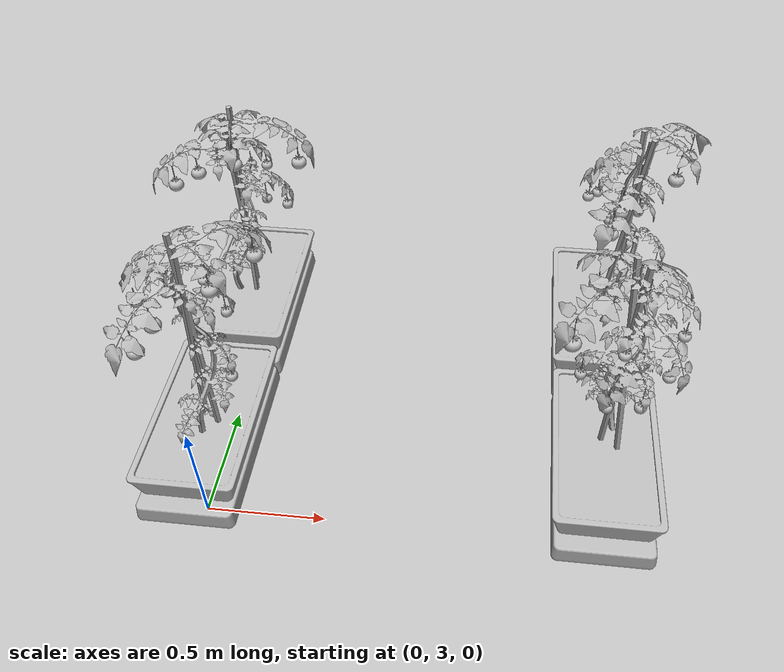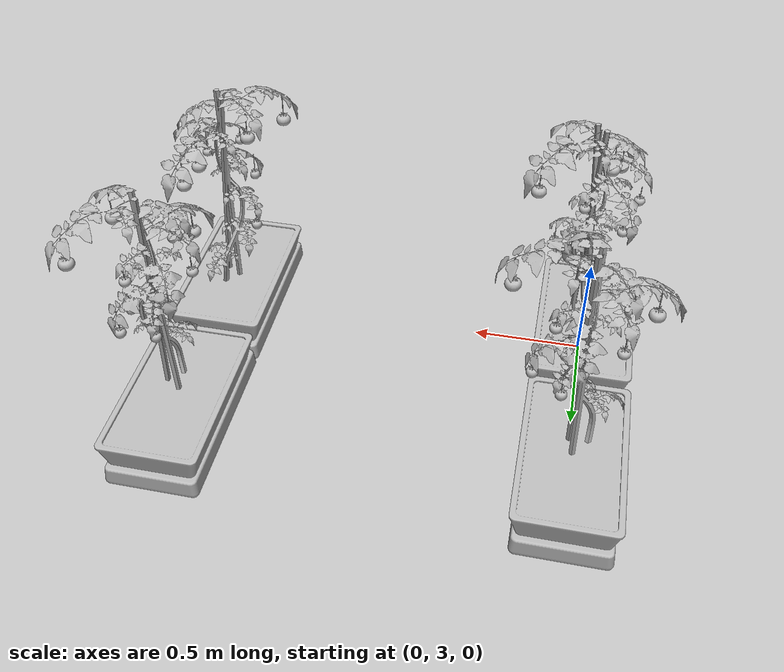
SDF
<sdf version="1.6">
 <world name="default">
  <model name="plant04">
   <static>0</static>
   <link name="tomato_plant_link">
    <inertial>
     <mass>20</mass>
     <inertia><ixx>1</ixx><ixy>0</ixy><ixz>0</ixz><iyy>1</iyy><iyz>0</iyz><izz>1</izz></inertia>
    </inertial>
    <visual name="visual">
     <geometry><mesh><uri>model://tomato_plant/meshes/tomato_plant.obj</uri></mesh></geometry>
    </visual>
    <collision name="collision">
     <pose>0 0 0.05 0 -0 0</pose>
     <geometry><box><size>0.1 0.1 0.1</size></box></geometry>
    </collision>
   </link>
   <link name="t_link_0">
    <pose>0.176111 0.046061 0.713729 0 -0 0</pose>
    <inertial>
     <mass>0.1</mass>
     <inertia><ixx>1</ixx><ixy>0</ixy><ixz>0</ixz><iyy>1</iyy><iyz>0</iyz><izz>1</izz></inertia>
    </inertial>
    <collision name="collision"><geometry><sphere><radius>0.02</radius></sphere></geometry></collision>
    <visual name="visual">
     <geometry><mesh><uri>model://green_tomato/meshes/green_tomato.obj</uri></mesh></geometry>
    </visual>
   </link>
   <joint name="t_joint_0" type="fixed">
    <parent>tomato_plant_link</parent>
    <child>t_link_0</child>
    <axis>
     <xyz>0 0 1</xyz>
     <use_parent_model_frame>1</use_parent_model_frame>
     <limit><lower>-1e+16</lower><upper>1e+16</upper></limit>
    </axis>
    <sensor name="force_torque" type="force_torque">
     <always_on>1</always_on>
     <update_rate>250</update_rate>
     <plugin name="breakable_0" filename="libBreakableJointPlugin.so">
      <breaking_force_N>10</breaking_force_N>
     </plugin>
    </sensor>
   </joint>
   <link name="t_link_1">
    <pose>0.063172 0.108629 0.685474 0 -0 0</pose>
    <inertial>
     <mass>0.1</mass>
     <inertia><ixx>1</ixx><ixy>0</ixy><ixz>0</ixz><iyy>1</iyy><iyz>0</iyz><izz>1</izz></inertia>
    </inertial>
    <collision name="collision"><geometry><sphere><radius>0.02</radius></sphere></geometry></collision>
    <visual name="visual">
     <geometry><mesh><uri>model://green_tomato/meshes/green_tomato.obj</uri></mesh></geometry>
    </visual>
   </link>
   <joint name="t_joint_1" type="fixed">
    <parent>tomato_plant_link</parent>
    <child>t_link_1</child>
    <axis>
     <xyz>0 0 1</xyz>
     <use_parent_model_frame>1</use_parent_model_frame>
     <limit><lower>-1e+16</lower><upper>1e+16</upper></limit>
    </axis>
    <sensor name="force_torque" type="force_torque">
     <always_on>1</always_on>
     <update_rate>250</update_rate>
     <plugin name="breakable_1" filename="libBreakableJointPlugin.so">
      <breaking_force_N>10</breaking_force_N>
     </plugin>
    </sensor>
   </joint>
   <link name="t_link_2">
    <pose>0.062027 -0.170581 0.614534 0 -0 0</pose>
    <inertial>
     <mass>0.1</mass>
     <inertia><ixx>1</ixx><ixy>0</ixy><ixz>0</ixz><iyy>1</iyy><iyz>0</iyz><izz>1</izz></inertia>
    </inertial>
    <collision name="collision"><geometry><sphere><radius>0.02</radius></sphere></geometry></collision>
    <visual name="visual">
     <geometry><mesh><uri>model://green_tomato/meshes/green_tomato.obj</uri></mesh></geometry>
    </visual>
   </link>
   <joint name="t_joint_2" type="fixed">
    <parent>tomato_plant_link</parent>
    <child>t_link_2</child>
    <axis>
     <xyz>0 0 1</xyz>
     <use_parent_model_frame>1</use_parent_model_frame>
     <limit><lower>-1e+16</lower><upper>1e+16</upper></limit>
    </axis>
    <sensor name="force_torque" type="force_torque">
     <always_on>1</always_on>
     <update_rate>250</update_rate>
     <plugin name="breakable_2" filename="libBreakableJointPlugin.so">
      <breaking_force_N>10</breaking_force_N>
     </plugin>
    </sensor>
   </joint>
   <link name="t_link_3">
    <pose>0.114746 0.0304 0.926457 0 -0 0</pose>
    <inertial>
     <mass>0.1</mass>
     <inertia><ixx>1</ixx><ixy>0</ixy><ixz>0</ixz><iyy>1</iyy><iyz>0</iyz><izz>1</izz></inertia>
    </inertial>
    <collision name="collision"><geometry><sphere><radius>0.02</radius></sphere></geometry></collision>
    <visual name="visual">
     <geometry><mesh><uri>model://yellow_tomato/meshes/yellow_tomato.obj</uri></mesh></geometry>
    </visual>
   </link>
   <joint name="t_joint_3" type="fixed">
    <parent>tomato_plant_link</parent>
    <child>t_link_3</child>
    <axis>
     <xyz>0 0 1</xyz>
     <use_parent_model_frame>1</use_parent_model_frame>
     <limit><lower>-1e+16</lower><upper>1e+16</upper></limit>
    </axis>
    <sensor name="force_torque" type="force_torque">
     <always_on>1</always_on>
     <update_rate>250</update_rate>
     <plugin name="breakable_3" filename="libBreakableJointPlugin.so">
      <breaking_force_N>10</breaking_force_N>
     </plugin>
    </sensor>
   </joint>
   <link name="t_link_4">
    <pose>0.003426 0.147925 0.840454 0 -0 0</pose>
    <inertial>
     <mass>0.1</mass>
     <inertia><ixx>1</ixx><ixy>0</ixy><ixz>0</ixz><iyy>1</iyy><iyz>0</iyz><izz>1</izz></inertia>
    </inertial>
    <collision name="collision"><geometry><sphere><radius>0.02</radius></sphere></geometry></collision>
    <visual name="visual">
     <geometry><mesh><uri>model://yellow_tomato/meshes/yellow_tomato.obj</uri></mesh></geometry>
    </visual>
   </link>
   <joint name="t_joint_4" type="fixed">
    <parent>tomato_plant_link</parent>
    <child>t_link_4</child>
    <axis>
     <xyz>0 0 1</xyz>
     <use_parent_model_frame>1</use_parent_model_frame>
     <limit><lower>-1e+16</lower><upper>1e+16</upper></limit>
    </axis>
    <sensor name="force_torque" type="force_torque">
     <always_on>1</always_on>
     <update_rate>250</update_rate>
     <plugin name="breakable_4" filename="libBreakableJointPlugin.so">
      <breaking_force_N>10</breaking_force_N>
     </plugin>
    </sensor>
   </joint>
   <link name="t_link_5">
    <pose>-0.12391 0.091553 0.91111 0 -0 0</pose>
    <inertial>
     <mass>0.1</mass>
     <inertia><ixx>1</ixx><ixy>0</ixy><ixz>0</ixz><iyy>1</iyy><iyz>0</iyz><izz>1</izz></inertia>
    </inertial>
    <collision name="collision"><geometry><sphere><radius>0.02</radius></sphere></geometry></collision>
    <visual name="visual">
     <geometry><mesh><uri>model://yellow_tomato/meshes/yellow_tomato.obj</uri></mesh></geometry>
    </visual>
   </link>
   <joint name="t_joint_5" type="fixed">
    <parent>tomato_plant_link</parent>
    <child>t_link_5</child>
    <axis>
     <xyz>0 0 1</xyz>
     <use_parent_model_frame>1</use_parent_model_frame>
     <limit><lower>-1e+16</lower><upper>1e+16</upper></limit>
    </axis>
    <sensor name="force_torque" type="force_torque">
     <always_on>1</always_on>
     <update_rate>250</update_rate>
     <plugin name="breakable_5" filename="libBreakableJointPlugin.so">
      <breaking_force_N>10</breaking_force_N>
     </plugin>
    </sensor>
   </joint>
   <link name="t_link_6">
    <pose>-0.23014 -0.132697 0.911579 0 -0 0</pose>
    <inertial>
     <mass>0.1</mass>
     <inertia><ixx>1</ixx><ixy>0</ixy><ixz>0</ixz><iyy>1</iyy><iyz>0</iyz><izz>1</izz></inertia>
    </inertial>
    <collision name="collision"><geometry><sphere><radius>0.03</radius></sphere></geometry></collision>
    <visual name="visual">
     <geometry><mesh><uri>model://red_tomato/meshes/red_tomato.obj</uri></mesh></geometry>
    </visual>
   </link>
   <joint name="t_joint_6" type="fixed">
    <parent>tomato_plant_link</parent>
    <child>t_link_6</child>
    <axis>
     <xyz>0 0 1</xyz>
     <use_parent_model_frame>1</use_parent_model_frame>
     <limit><lower>-1e+16</lower><upper>1e+16</upper></limit>
    </axis>
    <sensor name="force_torque" type="force_torque">
     <always_on>1</always_on>
     <update_rate>250</update_rate>
     <plugin name="breakable_6" filename="libBreakableJointPlugin.so">
      <breaking_force_N>10</breaking_force_N>
     </plugin>
    </sensor>
   </joint>
   <link name="t_link_7">
    <pose>-0.139776 -0.09326 0.950185 0 -0 0</pose>
    <inertial>
     <mass>0.1</mass>
     <inertia><ixx>1</ixx><ixy>0</ixy><ixz>0</ixz><iyy>1</iyy><iyz>0</iyz><izz>1</izz></inertia>
    </inertial>
    <collision name="collision"><geometry><sphere><radius>0.03</radius></sphere></geometry></collision>
    <visual name="visual">
     <geometry><mesh><uri>model://red_tomato/meshes/red_tomato.obj</uri></mesh></geometry>
    </visual>
   </link>
   <joint name="t_joint_7" type="fixed">
    <parent>tomato_plant_link</parent>
    <child>t_link_7</child>
    <axis>
     <xyz>0 0 1</xyz>
     <use_parent_model_frame>1</use_parent_model_frame>
     <limit><lower>-1e+16</lower><upper>1e+16</upper></limit>
    </axis>
    <sensor name="force_torque" type="force_torque">
     <always_on>1</always_on>
     <update_rate>250</update_rate>
     <plugin name="breakable_7" filename="libBreakableJointPlugin.so">
      <breaking_force_N>10</breaking_force_N>
     </plugin>
    </sensor>
   </joint>
   <link name="t_link_8">
    <pose>0.284181 -0.063758 1.01928 0 -0 0</pose>
    <inertial>
     <mass>0.1</mass>
     <inertia><ixx>1</ixx><ixy>0</ixy><ixz>0</ixz><iyy>1</iyy><iyz>0</iyz><izz>1</izz></inertia>
    </inertial>
    <collision name="collision"><geometry><sphere><radius>0.03</radius></sphere></geometry></collision>
    <visual name="visual">
     <geometry><mesh><uri>model://red_tomato/meshes/red_tomato.obj</uri></mesh></geometry>
    </visual>
   </link>
   <joint name="t_joint_8" type="fixed">
    <parent>tomato_plant_link</parent>
    <child>t_link_8</child>
    <axis>
     <xyz>0 0 1</xyz>
     <use_parent_model_frame>1</use_parent_model_frame>
     <limit><lower>-1e+16</lower><upper>1e+16</upper></limit>
    </axis>
    <sensor name="force_torque" type="force_torque">
     <always_on>1</always_on>
     <update_rate>250</update_rate>
     <plugin name="breakable_8" filename="libBreakableJointPlugin.so">
      <breaking_force_N>10</breaking_force_N>
     </plugin>
    </sensor>
   </joint>
   <link name="t_link_9">
    <pose>0.055319 -0.176349 1.06525 0 -0 0</pose>
    <inertial>
     <mass>0.1</mass>
     <inertia><ixx>1</ixx><ixy>0</ixy><ixz>0</ixz><iyy>1</iyy><iyz>0</iyz><izz>1</izz></inertia>
    </inertial>
    <collision name="collision"><geometry><sphere><radius>0.03</radius></sphere></geometry></collision>
    <visual name="visual">
     <geometry><mesh><uri>model://red_tomato/meshes/red_tomato.obj</uri></mesh></geometry>
    </visual>
   </link>
   <joint name="t_joint_9" type="fixed">
    <parent>tomato_plant_link</parent>
    <child>t_link_9</child>
    <axis>
     <xyz>0 0 1</xyz>
     <use_parent_model_frame>1</use_parent_model_frame>
     <limit><lower>-1e+16</lower><upper>1e+16</upper></limit>
    </axis>
    <sensor name="force_torque" type="force_torque">
     <always_on>1</always_on>
     <update_rate>250</update_rate>
     <plugin name="breakable_9" filename="libBreakableJointPlugin.so">
      <breaking_force_N>10</breaking_force_N>
     </plugin>
    </sensor>
   </joint>
   <pose>0.018753 3.21154 0.111703 0.000511 0.001752 0.771782</pose>
  </model>
  <model name="trough04">
   <static>1</static>
   <link name="trough_link">
    <visual name="visual"><geometry><mesh><uri>model://trough/meshes/truf.obj</uri></mesh></geometry></visual>
   </link>
   <pose>0 3.2 0.18 1.57 -0 1.57</pose>
  </model>
  <model name="plant05">
   <static>0</static>
   <link name="tomato_plant_link">
    <inertial>
     <mass>20</mass>
     <inertia><ixx>1</ixx><ixy>0</ixy><ixz>0</ixz><iyy>1</iyy><iyz>0</iyz><izz>1</izz></inertia>
    </inertial>
    <visual name="visual">
     <geometry><mesh><uri>model://tomato_plant/meshes/tomato_plant.obj</uri></mesh></geometry>
    </visual>
    <collision name="collision">
     <pose>0 0 0.05 0 -0 0</pose>
     <geometry><box><size>0.1 0.1 0.1</size></box></geometry>
    </collision>
   </link>
   <link name="t_link_0">
    <pose>0.176111 0.046061 0.713729 0 -0 0</pose>
    <inertial>
     <mass>0.1</mass>
     <inertia><ixx>1</ixx><ixy>0</ixy><ixz>0</ixz><iyy>1</iyy><iyz>0</iyz><izz>1</izz></inertia>
    </inertial>
    <collision name="collision"><geometry><sphere><radius>0.02</radius></sphere></geometry></collision>
    <visual name="visual">
     <geometry><mesh><uri>model://green_tomato/meshes/green_tomato.obj</uri></mesh></geometry>
    </visual>
   </link>
   <joint name="t_joint_0" type="fixed">
    <parent>tomato_plant_link</parent>
    <child>t_link_0</child>
    <axis>
     <xyz>0 0 1</xyz>
     <use_parent_model_frame>1</use_parent_model_frame>
     <limit><lower>-1e+16</lower><upper>1e+16</upper></limit>
    </axis>
    <sensor name="force_torque" type="force_torque">
     <always_on>1</always_on>
     <update_rate>250</update_rate>
     <plugin name="breakable_0" filename="libBreakableJointPlugin.so">
      <breaking_force_N>10</breaking_force_N>
     </plugin>
    </sensor>
   </joint>
   <link name="t_link_1">
    <pose>0.063172 0.108629 0.685474 0 -0 0</pose>
    <inertial>
     <mass>0.1</mass>
     <inertia><ixx>1</ixx><ixy>0</ixy><ixz>0</ixz><iyy>1</iyy><iyz>0</iyz><izz>1</izz></inertia>
    </inertial>
    <collision name="collision"><geometry><sphere><radius>0.02</radius></sphere></geometry></collision>
    <visual name="visual">
     <geometry><mesh><uri>model://green_tomato/meshes/green_tomato.obj</uri></mesh></geometry>
    </visual>
   </link>
   <joint name="t_joint_1" type="fixed">
    <parent>tomato_plant_link</parent>
    <child>t_link_1</child>
    <axis>
     <xyz>0 0 1</xyz>
     <use_parent_model_frame>1</use_parent_model_frame>
     <limit><lower>-1e+16</lower><upper>1e+16</upper></limit>
    </axis>
    <sensor name="force_torque" type="force_torque">
     <always_on>1</always_on>
     <update_rate>250</update_rate>
     <plugin name="breakable_1" filename="libBreakableJointPlugin.so">
      <breaking_force_N>10</breaking_force_N>
     </plugin>
    </sensor>
   </joint>
   <link name="t_link_2">
    <pose>0.062027 -0.170581 0.614534 0 -0 0</pose>
    <inertial>
     <mass>0.1</mass>
     <inertia><ixx>1</ixx><ixy>0</ixy><ixz>0</ixz><iyy>1</iyy><iyz>0</iyz><izz>1</izz></inertia>
    </inertial>
    <collision name="collision"><geometry><sphere><radius>0.02</radius></sphere></geometry></collision>
    <visual name="visual">
     <geometry><mesh><uri>model://green_tomato/meshes/green_tomato.obj</uri></mesh></geometry>
    </visual>
   </link>
   <joint name="t_joint_2" type="fixed">
    <parent>tomato_plant_link</parent>
    <child>t_link_2</child>
    <axis>
     <xyz>0 0 1</xyz>
     <use_parent_model_frame>1</use_parent_model_frame>
     <limit><lower>-1e+16</lower><upper>1e+16</upper></limit>
    </axis>
    <sensor name="force_torque" type="force_torque">
     <always_on>1</always_on>
     <update_rate>250</update_rate>
     <plugin name="breakable_2" filename="libBreakableJointPlugin.so">
      <breaking_force_N>10</breaking_force_N>
     </plugin>
    </sensor>
   </joint>
   <link name="t_link_3">
    <pose>0.114746 0.0304 0.926457 0 -0 0</pose>
    <inertial>
     <mass>0.1</mass>
     <inertia><ixx>1</ixx><ixy>0</ixy><ixz>0</ixz><iyy>1</iyy><iyz>0</iyz><izz>1</izz></inertia>
    </inertial>
    <collision name="collision"><geometry><sphere><radius>0.02</radius></sphere></geometry></collision>
    <visual name="visual">
     <geometry><mesh><uri>model://yellow_tomato/meshes/yellow_tomato.obj</uri></mesh></geometry>
    </visual>
   </link>
   <joint name="t_joint_3" type="fixed">
    <parent>tomato_plant_link</parent>
    <child>t_link_3</child>
    <axis>
     <xyz>0 0 1</xyz>
     <use_parent_model_frame>1</use_parent_model_frame>
     <limit><lower>-1e+16</lower><upper>1e+16</upper></limit>
    </axis>
    <sensor name="force_torque" type="force_torque">
     <always_on>1</always_on>
     <update_rate>250</update_rate>
     <plugin name="breakable_3" filename="libBreakableJointPlugin.so">
      <breaking_force_N>10</breaking_force_N>
     </plugin>
    </sensor>
   </joint>
   <link name="t_link_4">
    <pose>0.003426 0.147925 0.840454 0 -0 0</pose>
    <inertial>
     <mass>0.1</mass>
     <inertia><ixx>1</ixx><ixy>0</ixy><ixz>0</ixz><iyy>1</iyy><iyz>0</iyz><izz>1</izz></inertia>
    </inertial>
    <collision name="collision"><geometry><sphere><radius>0.02</radius></sphere></geometry></collision>
    <visual name="visual">
     <geometry><mesh><uri>model://yellow_tomato/meshes/yellow_tomato.obj</uri></mesh></geometry>
    </visual>
   </link>
   <joint name="t_joint_4" type="fixed">
    <parent>tomato_plant_link</parent>
    <child>t_link_4</child>
    <axis>
     <xyz>0 0 1</xyz>
     <use_parent_model_frame>1</use_parent_model_frame>
     <limit><lower>-1e+16</lower><upper>1e+16</upper></limit>
    </axis>
    <sensor name="force_torque" type="force_torque">
     <always_on>1</always_on>
     <update_rate>250</update_rate>
     <plugin name="breakable_4" filename="libBreakableJointPlugin.so">
      <breaking_force_N>10</breaking_force_N>
     </plugin>
    </sensor>
   </joint>
   <link name="t_link_5">
    <pose>-0.12391 0.091553 0.91111 0 -0 0</pose>
    <inertial>
     <mass>0.1</mass>
     <inertia><ixx>1</ixx><ixy>0</ixy><ixz>0</ixz><iyy>1</iyy><iyz>0</iyz><izz>1</izz></inertia>
    </inertial>
    <collision name="collision"><geometry><sphere><radius>0.02</radius></sphere></geometry></collision>
    <visual name="visual">
     <geometry><mesh><uri>model://yellow_tomato/meshes/yellow_tomato.obj</uri></mesh></geometry>
    </visual>
   </link>
   <joint name="t_joint_5" type="fixed">
    <parent>tomato_plant_link</parent>
    <child>t_link_5</child>
    <axis>
     <xyz>0 0 1</xyz>
     <use_parent_model_frame>1</use_parent_model_frame>
     <limit><lower>-1e+16</lower><upper>1e+16</upper></limit>
    </axis>
    <sensor name="force_torque" type="force_torque">
     <always_on>1</always_on>
     <update_rate>250</update_rate>
     <plugin name="breakable_5" filename="libBreakableJointPlugin.so">
      <breaking_force_N>10</breaking_force_N>
     </plugin>
    </sensor>
   </joint>
   <link name="t_link_6">
    <pose>-0.23014 -0.132697 0.911579 0 -0 0</pose>
    <inertial>
     <mass>0.1</mass>
     <inertia><ixx>1</ixx><ixy>0</ixy><ixz>0</ixz><iyy>1</iyy><iyz>0</iyz><izz>1</izz></inertia>
    </inertial>
    <collision name="collision"><geometry><sphere><radius>0.03</radius></sphere></geometry></collision>
    <visual name="visual">
     <geometry><mesh><uri>model://red_tomato/meshes/red_tomato.obj</uri></mesh></geometry>
    </visual>
   </link>
   <joint name="t_joint_6" type="fixed">
    <parent>tomato_plant_link</parent>
    <child>t_link_6</child>
    <axis>
     <xyz>0 0 1</xyz>
     <use_parent_model_frame>1</use_parent_model_frame>
     <limit><lower>-1e+16</lower><upper>1e+16</upper></limit>
    </axis>
    <sensor name="force_torque" type="force_torque">
     <always_on>1</always_on>
     <update_rate>250</update_rate>
     <plugin name="breakable_6" filename="libBreakableJointPlugin.so">
      <breaking_force_N>10</breaking_force_N>
     </plugin>
    </sensor>
   </joint>
   <link name="t_link_7">
    <pose>-0.139776 -0.09326 0.950185 0 -0 0</pose>
    <inertial>
     <mass>0.1</mass>
     <inertia><ixx>1</ixx><ixy>0</ixy><ixz>0</ixz><iyy>1</iyy><iyz>0</iyz><izz>1</izz></inertia>
    </inertial>
    <collision name="collision"><geometry><sphere><radius>0.03</radius></sphere></geometry></collision>
    <visual name="visual">
     <geometry><mesh><uri>model://red_tomato/meshes/red_tomato.obj</uri></mesh></geometry>
    </visual>
   </link>
   <joint name="t_joint_7" type="fixed">
    <parent>tomato_plant_link</parent>
    <child>t_link_7</child>
    <axis>
     <xyz>0 0 1</xyz>
     <use_parent_model_frame>1</use_parent_model_frame>
     <limit><lower>-1e+16</lower><upper>1e+16</upper></limit>
    </axis>
    <sensor name="force_torque" type="force_torque">
     <always_on>1</always_on>
     <update_rate>250</update_rate>
     <plugin name="breakable_7" filename="libBreakableJointPlugin.so">
      <breaking_force_N>10</breaking_force_N>
     </plugin>
    </sensor>
   </joint>
   <link name="t_link_8">
    <pose>0.284181 -0.063758 1.01928 0 -0 0</pose>
    <inertial>
     <mass>0.1</mass>
     <inertia><ixx>1</ixx><ixy>0</ixy><ixz>0</ixz><iyy>1</iyy><iyz>0</iyz><izz>1</izz></inertia>
    </inertial>
    <collision name="collision"><geometry><sphere><radius>0.03</radius></sphere></geometry></collision>
    <visual name="visual">
     <geometry><mesh><uri>model://red_tomato/meshes/red_tomato.obj</uri></mesh></geometry>
    </visual>
   </link>
   <joint name="t_joint_8" type="fixed">
    <parent>tomato_plant_link</parent>
    <child>t_link_8</child>
    <axis>
     <xyz>0 0 1</xyz>
     <use_parent_model_frame>1</use_parent_model_frame>
     <limit><lower>-1e+16</lower><upper>1e+16</upper></limit>
    </axis>
    <sensor name="force_torque" type="force_torque">
     <always_on>1</always_on>
     <update_rate>250</update_rate>
     <plugin name="breakable_8" filename="libBreakableJointPlugin.so">
      <breaking_force_N>10</breaking_force_N>
     </plugin>
    </sensor>
   </joint>
   <link name="t_link_9">
    <pose>0.055319 -0.176349 1.06525 0 -0 0</pose>
    <inertial>
     <mass>0.1</mass>
     <inertia><ixx>1</ixx><ixy>0</ixy><ixz>0</ixz><iyy>1</iyy><iyz>0</iyz><izz>1</izz></inertia>
    </inertial>
    <collision name="collision"><geometry><sphere><radius>0.03</radius></sphere></geometry></collision>
    <visual name="visual">
     <geometry><mesh><uri>model://red_tomato/meshes/red_tomato.obj</uri></mesh></geometry>
    </visual>
   </link>
   <joint name="t_joint_9" type="fixed">
    <parent>tomato_plant_link</parent>
    <child>t_link_9</child>
    <axis>
     <xyz>0 0 1</xyz>
     <use_parent_model_frame>1</use_parent_model_frame>
     <limit><lower>-1e+16</lower><upper>1e+16</upper></limit>
    </axis>
    <sensor name="force_torque" type="force_torque">
     <always_on>1</always_on>
     <update_rate>250</update_rate>
     <plugin name="breakable_9" filename="libBreakableJointPlugin.so">
      <breaking_force_N>10</breaking_force_N>
     </plugin>
    </sensor>
   </joint>
   <pose>0.020188 4.01228 0.11118 -0.000832 0.001624 -0.013698</pose>
  </model>
  <model name="trough05">
   <static>1</static>
   <link name="trough_link">
    <visual name="visual"><geometry><mesh><uri>model://trough/meshes/truf.obj</uri></mesh></geometry></visual>
   </link>
   <pose>0 4 0.18 1.57 -0 1.57</pose>
  </model>
  <model name="plant14">
   <static>0</static>
   <link name="tomato_plant_link">
    <inertial>
     <mass>20</mass>
     <inertia><ixx>1</ixx><ixy>0</ixy><ixz>0</ixz><iyy>1</iyy><iyz>0</iyz><izz>1</izz></inertia>
    </inertial>
    <visual name="visual">
     <geometry><mesh><uri>model://tomato_plant/meshes/tomato_plant.obj</uri></mesh></geometry>
    </visual>
    <collision name="collision">
     <pose>0 0 0.05 0 -0 0</pose>
     <geometry><box><size>0.1 0.1 0.1</size></box></geometry>
    </collision>
   </link>
   <link name="t_link_0">
    <pose>0.176111 0.046061 0.713729 0 -0 0</pose>
    <inertial>
     <mass>0.1</mass>
     <inertia><ixx>1</ixx><ixy>0</ixy><ixz>0</ixz><iyy>1</iyy><iyz>0</iyz><izz>1</izz></inertia>
    </inertial>
    <collision name="collision"><geometry><sphere><radius>0.02</radius></sphere></geometry></collision>
    <visual name="visual">
     <geometry><mesh><uri>model://green_tomato/meshes/green_tomato.obj</uri></mesh></geometry>
    </visual>
   </link>
   <joint name="t_joint_0" type="fixed">
    <parent>tomato_plant_link</parent>
    <child>t_link_0</child>
    <axis>
     <xyz>0 0 1</xyz>
     <use_parent_model_frame>1</use_parent_model_frame>
     <limit><lower>-1e+16</lower><upper>1e+16</upper></limit>
    </axis>
    <sensor name="force_torque" type="force_torque">
     <always_on>1</always_on>
     <update_rate>250</update_rate>
     <plugin name="breakable_0" filename="libBreakableJointPlugin.so">
      <breaking_force_N>10</breaking_force_N>
     </plugin>
    </sensor>
   </joint>
   <link name="t_link_1">
    <pose>0.063172 0.108629 0.685474 0 -0 0</pose>
    <inertial>
     <mass>0.1</mass>
     <inertia><ixx>1</ixx><ixy>0</ixy><ixz>0</ixz><iyy>1</iyy><iyz>0</iyz><izz>1</izz></inertia>
    </inertial>
    <collision name="collision"><geometry><sphere><radius>0.02</radius></sphere></geometry></collision>
    <visual name="visual">
     <geometry><mesh><uri>model://green_tomato/meshes/green_tomato.obj</uri></mesh></geometry>
    </visual>
   </link>
   <joint name="t_joint_1" type="fixed">
    <parent>tomato_plant_link</parent>
    <child>t_link_1</child>
    <axis>
     <xyz>0 0 1</xyz>
     <use_parent_model_frame>1</use_parent_model_frame>
     <limit><lower>-1e+16</lower><upper>1e+16</upper></limit>
    </axis>
    <sensor name="force_torque" type="force_torque">
     <always_on>1</always_on>
     <update_rate>250</update_rate>
     <plugin name="breakable_1" filename="libBreakableJointPlugin.so">
      <breaking_force_N>10</breaking_force_N>
     </plugin>
    </sensor>
   </joint>
   <link name="t_link_2">
    <pose>0.062027 -0.170581 0.614534 0 -0 0</pose>
    <inertial>
     <mass>0.1</mass>
     <inertia><ixx>1</ixx><ixy>0</ixy><ixz>0</ixz><iyy>1</iyy><iyz>0</iyz><izz>1</izz></inertia>
    </inertial>
    <collision name="collision"><geometry><sphere><radius>0.02</radius></sphere></geometry></collision>
    <visual name="visual">
     <geometry><mesh><uri>model://green_tomato/meshes/green_tomato.obj</uri></mesh></geometry>
    </visual>
   </link>
   <joint name="t_joint_2" type="fixed">
    <parent>tomato_plant_link</parent>
    <child>t_link_2</child>
    <axis>
     <xyz>0 0 1</xyz>
     <use_parent_model_frame>1</use_parent_model_frame>
     <limit><lower>-1e+16</lower><upper>1e+16</upper></limit>
    </axis>
    <sensor name="force_torque" type="force_torque">
     <always_on>1</always_on>
     <update_rate>250</update_rate>
     <plugin name="breakable_2" filename="libBreakableJointPlugin.so">
      <breaking_force_N>10</breaking_force_N>
     </plugin>
    </sensor>
   </joint>
   <link name="t_link_3">
    <pose>0.114746 0.0304 0.926457 0 -0 0</pose>
    <inertial>
     <mass>0.1</mass>
     <inertia><ixx>1</ixx><ixy>0</ixy><ixz>0</ixz><iyy>1</iyy><iyz>0</iyz><izz>1</izz></inertia>
    </inertial>
    <collision name="collision"><geometry><sphere><radius>0.02</radius></sphere></geometry></collision>
    <visual name="visual">
     <geometry><mesh><uri>model://yellow_tomato/meshes/yellow_tomato.obj</uri></mesh></geometry>
    </visual>
   </link>
   <joint name="t_joint_3" type="fixed">
    <parent>tomato_plant_link</parent>
    <child>t_link_3</child>
    <axis>
     <xyz>0 0 1</xyz>
     <use_parent_model_frame>1</use_parent_model_frame>
     <limit><lower>-1e+16</lower><upper>1e+16</upper></limit>
    </axis>
    <sensor name="force_torque" type="force_torque">
     <always_on>1</always_on>
     <update_rate>250</update_rate>
     <plugin name="breakable_3" filename="libBreakableJointPlugin.so">
      <breaking_force_N>10</breaking_force_N>
     </plugin>
    </sensor>
   </joint>
   <link name="t_link_4">
    <pose>0.003426 0.147925 0.840454 0 -0 0</pose>
    <inertial>
     <mass>0.1</mass>
     <inertia><ixx>1</ixx><ixy>0</ixy><ixz>0</ixz><iyy>1</iyy><iyz>0</iyz><izz>1</izz></inertia>
    </inertial>
    <collision name="collision"><geometry><sphere><radius>0.02</radius></sphere></geometry></collision>
    <visual name="visual">
     <geometry><mesh><uri>model://yellow_tomato/meshes/yellow_tomato.obj</uri></mesh></geometry>
    </visual>
   </link>
   <joint name="t_joint_4" type="fixed">
    <parent>tomato_plant_link</parent>
    <child>t_link_4</child>
    <axis>
     <xyz>0 0 1</xyz>
     <use_parent_model_frame>1</use_parent_model_frame>
     <limit><lower>-1e+16</lower><upper>1e+16</upper></limit>
    </axis>
    <sensor name="force_torque" type="force_torque">
     <always_on>1</always_on>
     <update_rate>250</update_rate>
     <plugin name="breakable_4" filename="libBreakableJointPlugin.so">
      <breaking_force_N>10</breaking_force_N>
     </plugin>
    </sensor>
   </joint>
   <link name="t_link_5">
    <pose>-0.12391 0.091553 0.91111 0 -0 0</pose>
    <inertial>
     <mass>0.1</mass>
     <inertia><ixx>1</ixx><ixy>0</ixy><ixz>0</ixz><iyy>1</iyy><iyz>0</iyz><izz>1</izz></inertia>
    </inertial>
    <collision name="collision"><geometry><sphere><radius>0.02</radius></sphere></geometry></collision>
    <visual name="visual">
     <geometry><mesh><uri>model://yellow_tomato/meshes/yellow_tomato.obj</uri></mesh></geometry>
    </visual>
   </link>
   <joint name="t_joint_5" type="fixed">
    <parent>tomato_plant_link</parent>
    <child>t_link_5</child>
    <axis>
     <xyz>0 0 1</xyz>
     <use_parent_model_frame>1</use_parent_model_frame>
     <limit><lower>-1e+16</lower><upper>1e+16</upper></limit>
    </axis>
    <sensor name="force_torque" type="force_torque">
     <always_on>1</always_on>
     <update_rate>250</update_rate>
     <plugin name="breakable_5" filename="libBreakableJointPlugin.so">
      <breaking_force_N>10</breaking_force_N>
     </plugin>
    </sensor>
   </joint>
   <link name="t_link_6">
    <pose>-0.23014 -0.132697 0.911579 0 -0 0</pose>
    <inertial>
     <mass>0.1</mass>
     <inertia><ixx>1</ixx><ixy>0</ixy><ixz>0</ixz><iyy>1</iyy><iyz>0</iyz><izz>1</izz></inertia>
    </inertial>
    <collision name="collision"><geometry><sphere><radius>0.03</radius></sphere></geometry></collision>
    <visual name="visual">
     <geometry><mesh><uri>model://red_tomato/meshes/red_tomato.obj</uri></mesh></geometry>
    </visual>
   </link>
   <joint name="t_joint_6" type="fixed">
    <parent>tomato_plant_link</parent>
    <child>t_link_6</child>
    <axis>
     <xyz>0 0 1</xyz>
     <use_parent_model_frame>1</use_parent_model_frame>
     <limit><lower>-1e+16</lower><upper>1e+16</upper></limit>
    </axis>
    <sensor name="force_torque" type="force_torque">
     <always_on>1</always_on>
     <update_rate>250</update_rate>
     <plugin name="breakable_6" filename="libBreakableJointPlugin.so">
      <breaking_force_N>10</breaking_force_N>
     </plugin>
    </sensor>
   </joint>
   <link name="t_link_7">
    <pose>-0.139776 -0.09326 0.950185 0 -0 0</pose>
    <inertial>
     <mass>0.1</mass>
     <inertia><ixx>1</ixx><ixy>0</ixy><ixz>0</ixz><iyy>1</iyy><iyz>0</iyz><izz>1</izz></inertia>
    </inertial>
    <collision name="collision"><geometry><sphere><radius>0.03</radius></sphere></geometry></collision>
    <visual name="visual">
     <geometry><mesh><uri>model://red_tomato/meshes/red_tomato.obj</uri></mesh></geometry>
    </visual>
   </link>
   <joint name="t_joint_7" type="fixed">
    <parent>tomato_plant_link</parent>
    <child>t_link_7</child>
    <axis>
     <xyz>0 0 1</xyz>
     <use_parent_model_frame>1</use_parent_model_frame>
     <limit><lower>-1e+16</lower><upper>1e+16</upper></limit>
    </axis>
    <sensor name="force_torque" type="force_torque">
     <always_on>1</always_on>
     <update_rate>250</update_rate>
     <plugin name="breakable_7" filename="libBreakableJointPlugin.so">
      <breaking_force_N>10</breaking_force_N>
     </plugin>
    </sensor>
   </joint>
   <link name="t_link_8">
    <pose>0.284181 -0.063758 1.01928 0 -0 0</pose>
    <inertial>
     <mass>0.1</mass>
     <inertia><ixx>1</ixx><ixy>0</ixy><ixz>0</ixz><iyy>1</iyy><iyz>0</iyz><izz>1</izz></inertia>
    </inertial>
    <collision name="collision"><geometry><sphere><radius>0.03</radius></sphere></geometry></collision>
    <visual name="visual">
     <geometry><mesh><uri>model://red_tomato/meshes/red_tomato.obj</uri></mesh></geometry>
    </visual>
   </link>
   <joint name="t_joint_8" type="fixed">
    <parent>tomato_plant_link</parent>
    <child>t_link_8</child>
    <axis>
     <xyz>0 0 1</xyz>
     <use_parent_model_frame>1</use_parent_model_frame>
     <limit><lower>-1e+16</lower><upper>1e+16</upper></limit>
    </axis>
    <sensor name="force_torque" type="force_torque">
     <always_on>1</always_on>
     <update_rate>250</update_rate>
     <plugin name="breakable_8" filename="libBreakableJointPlugin.so">
      <breaking_force_N>10</breaking_force_N>
     </plugin>
    </sensor>
   </joint>
   <link name="t_link_9">
    <pose>0.055319 -0.176349 1.06525 0 -0 0</pose>
    <inertial>
     <mass>0.1</mass>
     <inertia><ixx>1</ixx><ixy>0</ixy><ixz>0</ixz><iyy>1</iyy><iyz>0</iyz><izz>1</izz></inertia>
    </inertial>
    <collision name="collision"><geometry><sphere><radius>0.03</radius></sphere></geometry></collision>
    <visual name="visual">
     <geometry><mesh><uri>model://red_tomato/meshes/red_tomato.obj</uri></mesh></geometry>
    </visual>
   </link>
   <joint name="t_joint_9" type="fixed">
    <parent>tomato_plant_link</parent>
    <child>t_link_9</child>
    <axis>
     <xyz>0 0 1</xyz>
     <use_parent_model_frame>1</use_parent_model_frame>
     <limit><lower>-1e+16</lower><upper>1e+16</upper></limit>
    </axis>
    <sensor name="force_torque" type="force_torque">
     <always_on>1</always_on>
     <update_rate>250</update_rate>
     <plugin name="breakable_9" filename="libBreakableJointPlugin.so">
      <breaking_force_N>10</breaking_force_N>
     </plugin>
    </sensor>
   </joint>
   <pose>1.64185 3.20876 0.10912 -0.000594 -0.001632 -2.35782</pose>
  </model>
  <model name="trough14">
   <static>1</static>
   <link name="trough_link">
    <visual name="visual"><geometry><mesh><uri>model://trough/meshes/truf.obj</uri></mesh></geometry></visual>
   </link>
   <pose>1.62 3.2 0.18 1.57 -0 1.57</pose>
  </model>
  <model name="plant15">
   <static>0</static>
   <link name="tomato_plant_link">
    <inertial>
     <mass>20</mass>
     <inertia><ixx>1</ixx><ixy>0</ixy><ixz>0</ixz><iyy>1</iyy><iyz>0</iyz><izz>1</izz></inertia>
    </inertial>
    <visual name="visual">
     <geometry><mesh><uri>model://tomato_plant/meshes/tomato_plant.obj</uri></mesh></geometry>
    </visual>
    <collision name="collision">
     <pose>0 0 0.05 0 -0 0</pose>
     <geometry><box><size>0.1 0.1 0.1</size></box></geometry>
    </collision>
   </link>
   <link name="t_link_0">
    <pose>0.176111 0.046061 0.713729 0 -0 0</pose>
    <inertial>
     <mass>0.1</mass>
     <inertia><ixx>1</ixx><ixy>0</ixy><ixz>0</ixz><iyy>1</iyy><iyz>0</iyz><izz>1</izz></inertia>
    </inertial>
    <collision name="collision"><geometry><sphere><radius>0.02</radius></sphere></geometry></collision>
    <visual name="visual">
     <geometry><mesh><uri>model://green_tomato/meshes/green_tomato.obj</uri></mesh></geometry>
    </visual>
   </link>
   <joint name="t_joint_0" type="fixed">
    <parent>tomato_plant_link</parent>
    <child>t_link_0</child>
    <axis>
     <xyz>0 0 1</xyz>
     <use_parent_model_frame>1</use_parent_model_frame>
     <limit><lower>-1e+16</lower><upper>1e+16</upper></limit>
    </axis>
    <sensor name="force_torque" type="force_torque">
     <always_on>1</always_on>
     <update_rate>250</update_rate>
     <plugin name="breakable_0" filename="libBreakableJointPlugin.so">
      <breaking_force_N>10</breaking_force_N>
     </plugin>
    </sensor>
   </joint>
   <link name="t_link_1">
    <pose>0.063172 0.108629 0.685474 0 -0 0</pose>
    <inertial>
     <mass>0.1</mass>
     <inertia><ixx>1</ixx><ixy>0</ixy><ixz>0</ixz><iyy>1</iyy><iyz>0</iyz><izz>1</izz></inertia>
    </inertial>
    <collision name="collision"><geometry><sphere><radius>0.02</radius></sphere></geometry></collision>
    <visual name="visual">
     <geometry><mesh><uri>model://green_tomato/meshes/green_tomato.obj</uri></mesh></geometry>
    </visual>
   </link>
   <joint name="t_joint_1" type="fixed">
    <parent>tomato_plant_link</parent>
    <child>t_link_1</child>
    <axis>
     <xyz>0 0 1</xyz>
     <use_parent_model_frame>1</use_parent_model_frame>
     <limit><lower>-1e+16</lower><upper>1e+16</upper></limit>
    </axis>
    <sensor name="force_torque" type="force_torque">
     <always_on>1</always_on>
     <update_rate>250</update_rate>
     <plugin name="breakable_1" filename="libBreakableJointPlugin.so">
      <breaking_force_N>10</breaking_force_N>
     </plugin>
    </sensor>
   </joint>
   <link name="t_link_2">
    <pose>0.062027 -0.170581 0.614534 0 -0 0</pose>
    <inertial>
     <mass>0.1</mass>
     <inertia><ixx>1</ixx><ixy>0</ixy><ixz>0</ixz><iyy>1</iyy><iyz>0</iyz><izz>1</izz></inertia>
    </inertial>
    <collision name="collision"><geometry><sphere><radius>0.02</radius></sphere></geometry></collision>
    <visual name="visual">
     <geometry><mesh><uri>model://green_tomato/meshes/green_tomato.obj</uri></mesh></geometry>
    </visual>
   </link>
   <joint name="t_joint_2" type="fixed">
    <parent>tomato_plant_link</parent>
    <child>t_link_2</child>
    <axis>
     <xyz>0 0 1</xyz>
     <use_parent_model_frame>1</use_parent_model_frame>
     <limit><lower>-1e+16</lower><upper>1e+16</upper></limit>
    </axis>
    <sensor name="force_torque" type="force_torque">
     <always_on>1</always_on>
     <update_rate>250</update_rate>
     <plugin name="breakable_2" filename="libBreakableJointPlugin.so">
      <breaking_force_N>10</breaking_force_N>
     </plugin>
    </sensor>
   </joint>
   <link name="t_link_3">
    <pose>0.114746 0.0304 0.926457 0 -0 0</pose>
    <inertial>
     <mass>0.1</mass>
     <inertia><ixx>1</ixx><ixy>0</ixy><ixz>0</ixz><iyy>1</iyy><iyz>0</iyz><izz>1</izz></inertia>
    </inertial>
    <collision name="collision"><geometry><sphere><radius>0.02</radius></sphere></geometry></collision>
    <visual name="visual">
     <geometry><mesh><uri>model://yellow_tomato/meshes/yellow_tomato.obj</uri></mesh></geometry>
    </visual>
   </link>
   <joint name="t_joint_3" type="fixed">
    <parent>tomato_plant_link</parent>
    <child>t_link_3</child>
    <axis>
     <xyz>0 0 1</xyz>
     <use_parent_model_frame>1</use_parent_model_frame>
     <limit><lower>-1e+16</lower><upper>1e+16</upper></limit>
    </axis>
    <sensor name="force_torque" type="force_torque">
     <always_on>1</always_on>
     <update_rate>250</update_rate>
     <plugin name="breakable_3" filename="libBreakableJointPlugin.so">
      <breaking_force_N>10</breaking_force_N>
     </plugin>
    </sensor>
   </joint>
   <link name="t_link_4">
    <pose>0.003426 0.147925 0.840454 0 -0 0</pose>
    <inertial>
     <mass>0.1</mass>
     <inertia><ixx>1</ixx><ixy>0</ixy><ixz>0</ixz><iyy>1</iyy><iyz>0</iyz><izz>1</izz></inertia>
    </inertial>
    <collision name="collision"><geometry><sphere><radius>0.02</radius></sphere></geometry></collision>
    <visual name="visual">
     <geometry><mesh><uri>model://yellow_tomato/meshes/yellow_tomato.obj</uri></mesh></geometry>
    </visual>
   </link>
   <joint name="t_joint_4" type="fixed">
    <parent>tomato_plant_link</parent>
    <child>t_link_4</child>
    <axis>
     <xyz>0 0 1</xyz>
     <use_parent_model_frame>1</use_parent_model_frame>
     <limit><lower>-1e+16</lower><upper>1e+16</upper></limit>
    </axis>
    <sensor name="force_torque" type="force_torque">
     <always_on>1</always_on>
     <update_rate>250</update_rate>
     <plugin name="breakable_4" filename="libBreakableJointPlugin.so">
      <breaking_force_N>10</breaking_force_N>
     </plugin>
    </sensor>
   </joint>
   <link name="t_link_5">
    <pose>-0.12391 0.091553 0.91111 0 -0 0</pose>
    <inertial>
     <mass>0.1</mass>
     <inertia><ixx>1</ixx><ixy>0</ixy><ixz>0</ixz><iyy>1</iyy><iyz>0</iyz><izz>1</izz></inertia>
    </inertial>
    <collision name="collision"><geometry><sphere><radius>0.02</radius></sphere></geometry></collision>
    <visual name="visual">
     <geometry><mesh><uri>model://yellow_tomato/meshes/yellow_tomato.obj</uri></mesh></geometry>
    </visual>
   </link>
   <joint name="t_joint_5" type="fixed">
    <parent>tomato_plant_link</parent>
    <child>t_link_5</child>
    <axis>
     <xyz>0 0 1</xyz>
     <use_parent_model_frame>1</use_parent_model_frame>
     <limit><lower>-1e+16</lower><upper>1e+16</upper></limit>
    </axis>
    <sensor name="force_torque" type="force_torque">
     <always_on>1</always_on>
     <update_rate>250</update_rate>
     <plugin name="breakable_5" filename="libBreakableJointPlugin.so">
      <breaking_force_N>10</breaking_force_N>
     </plugin>
    </sensor>
   </joint>
   <link name="t_link_6">
    <pose>-0.23014 -0.132697 0.911579 0 -0 0</pose>
    <inertial>
     <mass>0.1</mass>
     <inertia><ixx>1</ixx><ixy>0</ixy><ixz>0</ixz><iyy>1</iyy><iyz>0</iyz><izz>1</izz></inertia>
    </inertial>
    <collision name="collision"><geometry><sphere><radius>0.03</radius></sphere></geometry></collision>
    <visual name="visual">
     <geometry><mesh><uri>model://red_tomato/meshes/red_tomato.obj</uri></mesh></geometry>
    </visual>
   </link>
   <joint name="t_joint_6" type="fixed">
    <parent>tomato_plant_link</parent>
    <child>t_link_6</child>
    <axis>
     <xyz>0 0 1</xyz>
     <use_parent_model_frame>1</use_parent_model_frame>
     <limit><lower>-1e+16</lower><upper>1e+16</upper></limit>
    </axis>
    <sensor name="force_torque" type="force_torque">
     <always_on>1</always_on>
     <update_rate>250</update_rate>
     <plugin name="breakable_6" filename="libBreakableJointPlugin.so">
      <breaking_force_N>10</breaking_force_N>
     </plugin>
    </sensor>
   </joint>
   <link name="t_link_7">
    <pose>-0.139776 -0.09326 0.950185 0 -0 0</pose>
    <inertial>
     <mass>0.1</mass>
     <inertia><ixx>1</ixx><ixy>0</ixy><ixz>0</ixz><iyy>1</iyy><iyz>0</iyz><izz>1</izz></inertia>
    </inertial>
    <collision name="collision"><geometry><sphere><radius>0.03</radius></sphere></geometry></collision>
    <visual name="visual">
     <geometry><mesh><uri>model://red_tomato/meshes/red_tomato.obj</uri></mesh></geometry>
    </visual>
   </link>
   <joint name="t_joint_7" type="fixed">
    <parent>tomato_plant_link</parent>
    <child>t_link_7</child>
    <axis>
     <xyz>0 0 1</xyz>
     <use_parent_model_frame>1</use_parent_model_frame>
     <limit><lower>-1e+16</lower><upper>1e+16</upper></limit>
    </axis>
    <sensor name="force_torque" type="force_torque">
     <always_on>1</always_on>
     <update_rate>250</update_rate>
     <plugin name="breakable_7" filename="libBreakableJointPlugin.so">
      <breaking_force_N>10</breaking_force_N>
     </plugin>
    </sensor>
   </joint>
   <link name="t_link_8">
    <pose>0.284181 -0.063758 1.01928 0 -0 0</pose>
    <inertial>
     <mass>0.1</mass>
     <inertia><ixx>1</ixx><ixy>0</ixy><ixz>0</ixz><iyy>1</iyy><iyz>0</iyz><izz>1</izz></inertia>
    </inertial>
    <collision name="collision"><geometry><sphere><radius>0.03</radius></sphere></geometry></collision>
    <visual name="visual">
     <geometry><mesh><uri>model://red_tomato/meshes/red_tomato.obj</uri></mesh></geometry>
    </visual>
   </link>
   <joint name="t_joint_8" type="fixed">
    <parent>tomato_plant_link</parent>
    <child>t_link_8</child>
    <axis>
     <xyz>0 0 1</xyz>
     <use_parent_model_frame>1</use_parent_model_frame>
     <limit><lower>-1e+16</lower><upper>1e+16</upper></limit>
    </axis>
    <sensor name="force_torque" type="force_torque">
     <always_on>1</always_on>
     <update_rate>250</update_rate>
     <plugin name="breakable_8" filename="libBreakableJointPlugin.so">
      <breaking_force_N>10</breaking_force_N>
     </plugin>
    </sensor>
   </joint>
   <link name="t_link_9">
    <pose>0.055319 -0.176349 1.06525 0 -0 0</pose>
    <inertial>
     <mass>0.1</mass>
     <inertia><ixx>1</ixx><ixy>0</ixy><ixz>0</ixz><iyy>1</iyy><iyz>0</iyz><izz>1</izz></inertia>
    </inertial>
    <collision name="collision"><geometry><sphere><radius>0.03</radius></sphere></geometry></collision>
    <visual name="visual">
     <geometry><mesh><uri>model://red_tomato/meshes/red_tomato.obj</uri></mesh></geometry>
    </visual>
   </link>
   <joint name="t_joint_9" type="fixed">
    <parent>tomato_plant_link</parent>
    <child>t_link_9</child>
    <axis>
     <xyz>0 0 1</xyz>
     <use_parent_model_frame>1</use_parent_model_frame>
     <limit><lower>-1e+16</lower><upper>1e+16</upper></limit>
    </axis>
    <sensor name="force_torque" type="force_torque">
     <always_on>1</always_on>
     <update_rate>250</update_rate>
     <plugin name="breakable_9" filename="libBreakableJointPlugin.so">
      <breaking_force_N>10</breaking_force_N>
     </plugin>
    </sensor>
   </joint>
   <pose>1.63862 4.01146 0.108488 0.000511 0.001752 0.771872</pose>
  </model>
  <model name="trough15">
   <static>1</static>
   <link name="trough_link">
    <visual name="visual"><geometry><mesh><uri>model://trough/meshes/truf.obj</uri></mesh></geometry></visual>
   </link>
   <pose>1.62 4 0.18 1.57 -0 1.57</pose>
  </model>
 </world>
</sdf>
